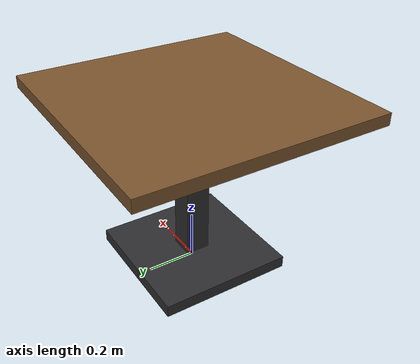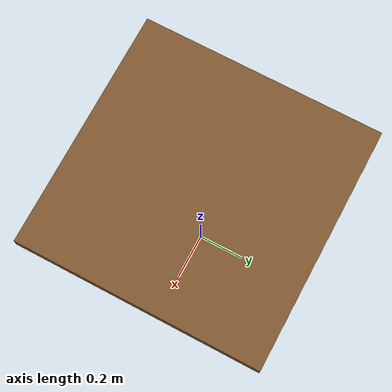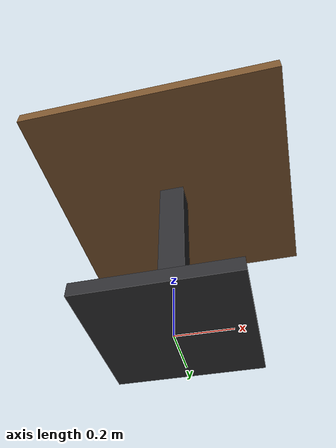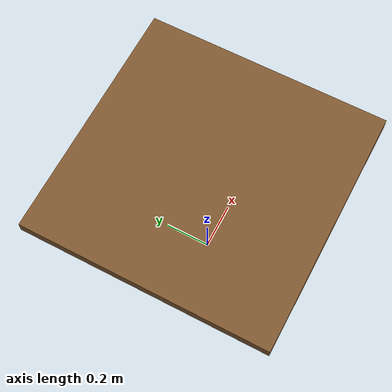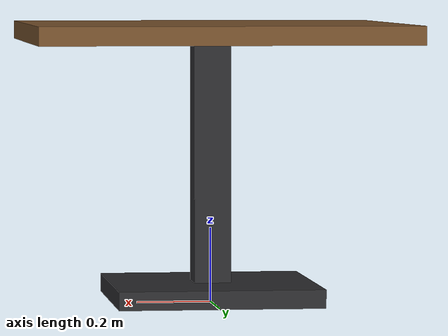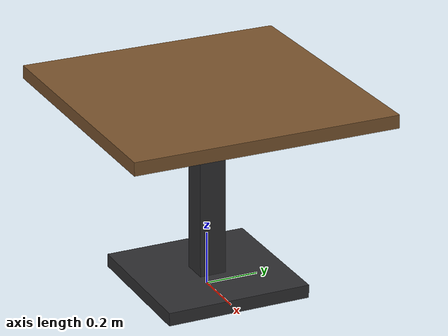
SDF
<?xml version="1.0" ?>
<sdf version="1.6">
  <model name="dining_table_4">
    <static>true</static>

    <link name="table_link">
      <!-- ===== R5 COLLISIONS ===== -->
      <!-- Tabletop -->
      <collision name="top_col">
        <pose>0 0 0.73 0 0 0</pose>
        <geometry><box><size>1.0 1.0 0.05</size></box></geometry>
      </collision>
      <!-- Central pedestal (single box, robot-friendly) -->
      <collision name="pedestal_col">
        <pose>0 0 0.36 0 0 0</pose>
        <geometry><box><size>0.12 0.12 0.72</size></box></geometry>
        <surface><friction><ode><mu>0.6</mu><mu2>0.6</mu2></ode></friction></surface>
      </collision>

      <!-- ===== VISUALS ===== -->
      <!-- Tabletop: warm oak -->
      <visual name="top_vis">
        <pose>0 0 0.73 0 0 0</pose>
        <geometry><box><size>1.0 1.0 0.05</size></box></geometry>
        <material>
          <ambient>0.32 0.22 0.12 1</ambient>
          <diffuse>0.48 0.33 0.18 1</diffuse>
          <specular>0.20 0.15 0.10 1</specular>
        </material>
      </visual>
      <!-- Central column -->
      <visual name="column_vis">
        <pose>0 0 0.38 0 0 0</pose>
        <geometry><box><size>0.10 0.10 0.70</size></box></geometry>
        <material><ambient>0.12 0.12 0.13 1</ambient><diffuse>0.18 0.18 0.19 1</diffuse><specular>0.35 0.35 0.37 1</specular></material>
      </visual>
      <!-- Cross base foot -->
      <visual name="base_vis">
        <pose>0 0 0.03 0 0 0</pose>
        <geometry><box><size>0.55 0.55 0.05</size></box></geometry>
        <material><ambient>0.12 0.12 0.13 1</ambient><diffuse>0.18 0.18 0.19 1</diffuse><specular>0.35 0.35 0.37 1</specular></material>
      </visual>
    </link>
  </model>
</sdf>
